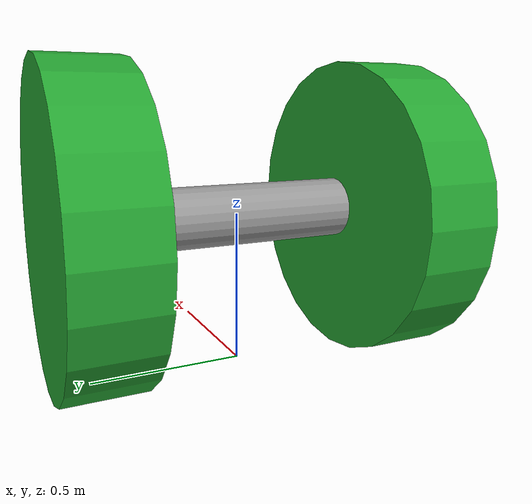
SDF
<?xml version="1.0" ?>
<sdf version='1.4'>
  <model name='two_wheeled_robot'>
    <link name='base_link'>
      <pose>0 0 0 0 0 0</pose>
    </link>
    <link name='left_wheel'>
      <pose>0.000000 0.5 0.5 1.57 3.14 0.000000</pose>
      <inertial>
        <pose>0. 0. 0. 0. 0.000000 0.000000</pose>
        <mass>5</mass>
        <inertia>
          <ixx>0.317</ixx>
          <ixy>0.0</ixy>
          <ixz>0.0</ixz>
          <iyy>0.317</iyy>
          <iyz>0.0</iyz>
          <izz>0.625</izz>
        </inertia>
      </inertial>
      <collision name='left_wheel_collision'>
        <pose>0.000000 0. 0. 0. 0.000000 0.000000</pose>
        <geometry>
          <cylinder>
            <radius>0.5</radius>
            <length>0.25</length>
          </cylinder>
        </geometry>
        <surface>
          <friction>
            <ode>
              <mu>1.</mu>
              <mu2>1.</mu2>
            </ode>
          </friction>
        </surface>
      </collision>
      <visual name='left_wheel_visual'>
        <pose>0.000000 0. 0. 0. 0.000000 0.000000</pose>
        <geometry>
          <cylinder>
            <radius>0.5</radius>
            <length>0.25</length>
          </cylinder>
        </geometry>
        <material>
          <script>
            <name>Gazebo/Green</name>
            <uri>__default__</uri>
          </script>
        </material>
      </visual>
    </link>
    <joint name='left_wheel_joint' type='revolute'>
      <child>left_wheel</child>
      <parent>horizontal_connector</parent>
      <axis>
        <limit>
          <lower>-100000000000000000000</lower>
          <upper>100000000000000000000</upper>
        </limit>
        <dynamics>
          <damping>0.000000</damping>
        </dynamics>
        <xyz>0.000000 1.000000 0.000000</xyz>
      </axis>
    </joint>-->
    <link name='right_wheel'>
      <pose>0. -0.5 0.5 1.57 0. 0.000000</pose>
      <inertial>
        <pose>0. 0. 0. 0. 0.000000 0.000000</pose>
        <mass>5</mass>
        <inertia>
          <ixx>0.317</ixx>
          <ixy>0.0</ixy>
          <ixz>0.0</ixz>
          <iyy>0.317</iyy>
          <iyz>0.0</iyz>
          <izz>0.625</izz>
        </inertia>
      </inertial>
      <collision name='right_wheel_collision'>
        <pose>0.000000 0. 0. 0. 0.000000 0.000000</pose>
        <geometry>
          <cylinder>
            <radius>0.5</radius>
            <length>0.25</length>
          </cylinder>
        </geometry>
        <surface>
          <friction>
            <ode>
              <mu>1.</mu>
              <mu2>1.</mu2>
            </ode>
          </friction>
        </surface>
      </collision>
      <visual name='right_wheel_visual'>
        <pose>0.000000 0. 0. 0. 0.000000 0.000000</pose>
        <geometry>
          <cylinder>
            <radius>0.5</radius>
            <length>0.25</length>
          </cylinder>
        </geometry>
        <material>
          <script>
            <name>Gazebo/Green</name>
            <uri>__default__</uri>
          </script>
        </material>
      </visual>
    </link>
    <joint name='right_wheel_joint' type='revolute'>
      <child>right_wheel</child>
      <parent>horizontal_connector</parent>
      <axis>
        <limit>
          <lower>-100000000000000000000</lower>
          <upper>100000000000000000000</upper>
        </limit>
        <dynamics>
          <damping>0.000000</damping>
        </dynamics>
        <xyz>0.000000 1.000000 0.000000</xyz>
      </axis>
    </joint>
    <link name='horizontal_connector'>
      <pose>0. 0.000000 0.5 1.57 0.000000 0.000000</pose>
      <inertial>
        <pose>0. 0.000000 0. 0. 0.000000 0.000000</pose>
        <mass>1</mass>
        <inertia>
          <ixx>0.317</ixx>-->
          <ixy>0.0</ixy>
          <ixz>0.0</ixz>
          <iyy>0.494</iyy>-->
          <iyz>0.0</iyz>
          <izz>1000.</izz>
        </inertia>
      </inertial>
      <collision name='horizontal_connector_collision'>
        <pose>0.000000 0.000000 0. 0. 0.000000 0.000000</pose>
        <geometry>
          <cylinder>
            <radius>0.1</radius>
            <length>0.75</length>
          </cylinder>
        </geometry>
      </collision>
      <visual name='horizontal_connector_visual'>
        <pose>0.000000 0.000000 0. 0. 0.000000 0.000000</pose>
        <geometry>
          <cylinder>
            <radius>0.1</radius>
            <length>0.75</length>
          </cylinder>
        </geometry>
        <material>
          <script>
            <name>Gazebo/Gray</name>
            <uri>__default__</uri>
          </script>
        </material>
      </visual>
    </link>
    <joint name='base_joint' type='revolute'>
      <child>horizontal_connector</child>
      <parent>base_link</parent>
      <axis>
        <limit>
          <lower>0</lower>
          <upper>0</upper>
        </limit>
        <dynamics>
          <damping>0.000000</damping>
        </dynamics>
        <xyz>0.000000 1.000000 0.000000</xyz>
      </axis>
    </joint>
    <plugin name="DifferentialDrivePlugin" filename="libDifferentialDrivePlugin.so">
    </plugin>-->
  </model>

</sdf>
